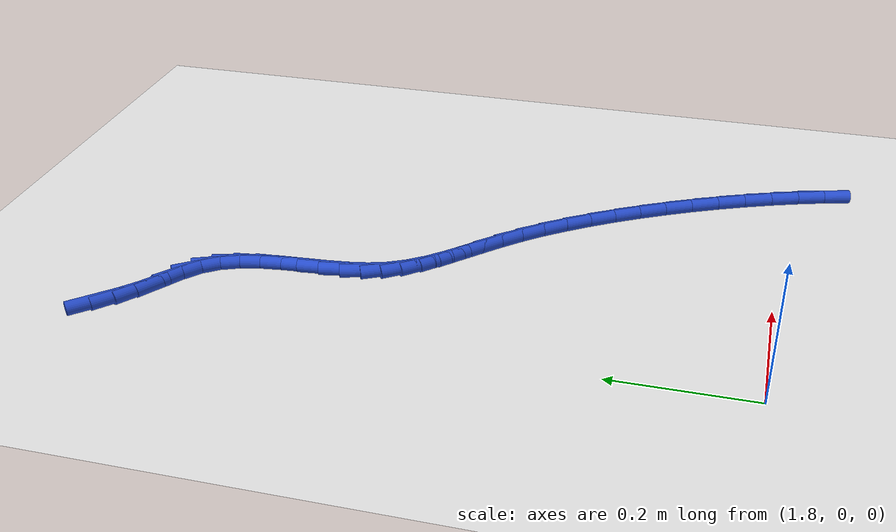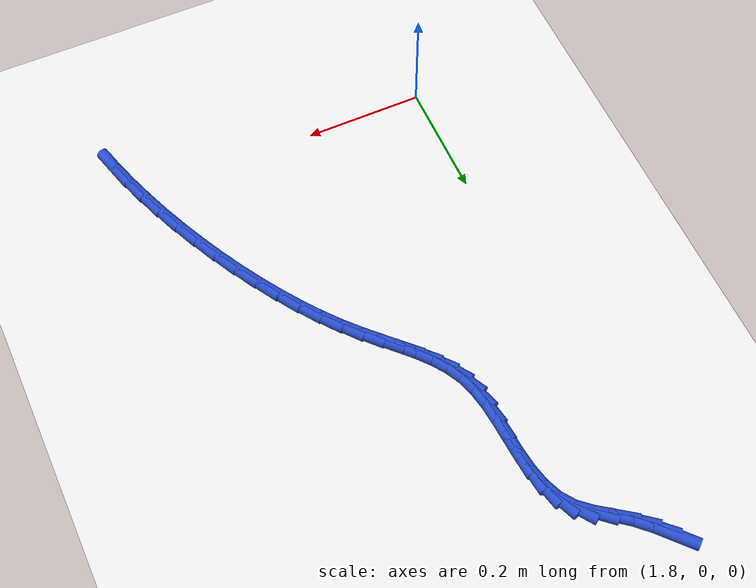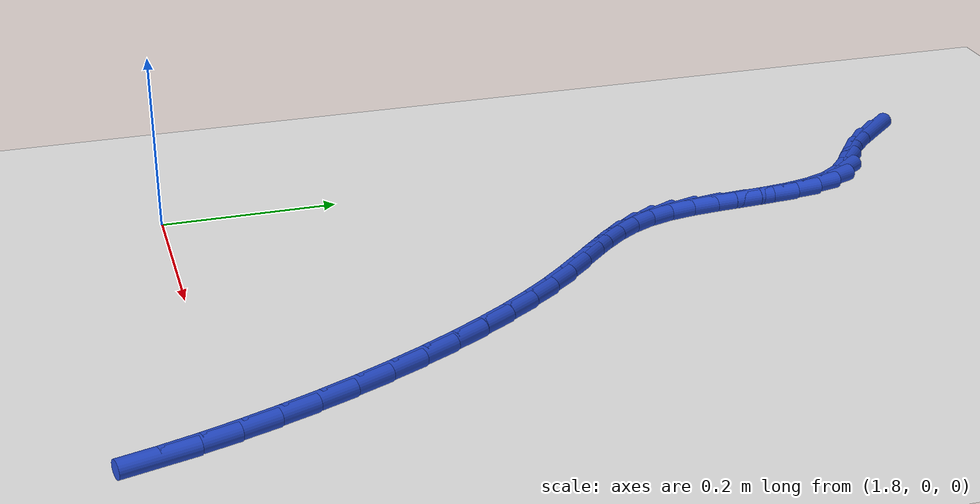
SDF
<sdf version="1.6">
 <world name="default">
  <model name="ground_plane">
   <static>1</static>
   <link name="link">
    <collision name="collision">
     <geometry><plane><normal>0 0 1</normal><size>100 100</size></plane></geometry>
     <surface><friction><ode><mu>100</mu><mu2>50</mu2></ode></friction></surface>
    </collision>
    <visual name="visual">
     <cast_shadows>0</cast_shadows>
     <geometry><plane><normal>0 0 1</normal><size>100 100</size></plane></geometry>
     <material>
      <script><uri>file://media/materials/scripts/gazebo.material</uri><name>Gazebo/WhiteGlow</name></script>
     </material>
    </visual>
   </link>
  </model>
  <model name="line">
   <link name="link_97">
    <pose>1.7933710728537295 0.8896627664505518 0.01 0 1.57 -0.8343291271236721</pose>
    <collision name="collision">
     <geometry><cylinder><radius>0.01</radius><length>0.08</length></cylinder></geometry>
    </collision>
    <visual name="visual">
     <material>
      <script><name>Gazebo/Blue</name><uri>file://media/materials/scripts/gazebo.material</uri></script>
     </material>
     <geometry><cylinder><radius>0.01</radius><length>0.08</length></cylinder></geometry>
    </visual>
   </link>
   <link name="link_98">
    <pose>1.8142726996185656 0.8666086233509885 0.01 0 1.57 -0.7571475396808894</pose>
    <collision name="collision">
     <geometry><cylinder><radius>0.01</radius><length>0.08</length></cylinder></geometry>
    </collision>
    <visual name="visual">
     <material>
      <script><name>Gazebo/Blue</name><uri>file://media/materials/scripts/gazebo.material</uri></script>
     </material>
     <geometry><cylinder><radius>0.01</radius><length>0.08</length></cylinder></geometry>
    </visual>
   </link>
   <link name="link_99">
    <pose>1.8366672112632192 0.8454449841064782 0.01 0 1.57 -0.6636603782006256</pose>
    <collision name="collision">
     <geometry><cylinder><radius>0.01</radius><length>0.08</length></cylinder></geometry>
    </collision>
    <visual name="visual">
     <material>
      <script><name>Gazebo/Blue</name><uri>file://media/materials/scripts/gazebo.material</uri></script>
     </material>
     <geometry><cylinder><radius>0.01</radius><length>0.08</length></cylinder></geometry>
    </visual>
   </link>
   <link name="link_100">
    <pose>1.8607914538881587 0.8265801444571018 0.01 0 1.57 -0.616992772604168</pose>
    <collision name="collision">
     <geometry><cylinder><radius>0.01</radius><length>0.08</length></cylinder></geometry>
    </collision>
    <visual name="visual">
     <material>
      <script><name>Gazebo/Blue</name><uri>file://media/materials/scripts/gazebo.material</uri></script>
     </material>
     <geometry><cylinder><radius>0.01</radius><length>0.08</length></cylinder></geometry>
    </visual>
   </link>
   <link name="link_101">
    <pose>1.8854063956211324 0.8091188263907333 0.01 0 1.57 -0.7208788655949174</pose>
    <collision name="collision">
     <geometry><cylinder><radius>0.01</radius><length>0.08</length></cylinder></geometry>
    </collision>
    <visual name="visual">
     <material>
      <script><name>Gazebo/Blue</name><uri>file://media/materials/scripts/gazebo.material</uri></script>
     </material>
     <geometry><cylinder><radius>0.01</radius><length>0.08</length></cylinder></geometry>
    </visual>
   </link>
   <link name="link_102">
    <pose>1.906993225353623 0.7901521190332621 0.01 0 1.57 -0.9642696358644515</pose>
    <collision name="collision">
     <geometry><cylinder><radius>0.01</radius><length>0.08</length></cylinder></geometry>
    </collision>
    <visual name="visual">
     <material>
      <script><name>Gazebo/Blue</name><uri>file://media/materials/scripts/gazebo.material</uri></script>
     </material>
     <geometry><cylinder><radius>0.01</radius><length>0.08</length></cylinder></geometry>
    </visual>
   </link>
   <link name="link_103">
    <pose>1.9228018541670975 0.7673652802544804 0.01 0 1.57 -1.1887102563978869</pose>
    <collision name="collision">
     <geometry><cylinder><radius>0.01</radius><length>0.08</length></cylinder></geometry>
    </collision>
    <visual name="visual">
     <material>
      <script><name>Gazebo/Blue</name><uri>file://media/materials/scripts/gazebo.material</uri></script>
     </material>
     <geometry><cylinder><radius>0.01</radius><length>0.08</length></cylinder></geometry>
    </visual>
   </link>
   <link name="link_104">
    <pose>1.9333721927984975 0.7410600172873854 0.01 0 1.57 -1.347632574996978</pose>
    <collision name="collision">
     <geometry><cylinder><radius>0.01</radius><length>0.08</length></cylinder></geometry>
    </collision>
    <visual name="visual">
     <material>
      <script><name>Gazebo/Blue</name><uri>file://media/materials/scripts/gazebo.material</uri></script>
     </material>
     <geometry><cylinder><radius>0.01</radius><length>0.08</length></cylinder></geometry>
    </visual>
   </link>
   <link name="link_105">
    <pose>1.9399454495634814 0.7120957607070432 0.01 0 1.57 -1.4473406068308807</pose>
    <collision name="collision">
     <geometry><cylinder><radius>0.01</radius><length>0.08</length></cylinder></geometry>
    </collision>
    <visual name="visual">
     <material>
      <script><name>Gazebo/Blue</name><uri>file://media/materials/scripts/gazebo.material</uri></script>
     </material>
     <geometry><cylinder><radius>0.01</radius><length>0.08</length></cylinder></geometry>
    </visual>
   </link>
   <link name="link_106">
    <pose>1.9437628327777103 0.6813319410885196 0.01 0 1.57 -1.498291754001495</pose>
    <collision name="collision">
     <geometry><cylinder><radius>0.01</radius><length>0.08</length></cylinder></geometry>
    </collision>
    <visual name="visual">
     <material>
      <script><name>Gazebo/Blue</name><uri>file://media/materials/scripts/gazebo.material</uri></script>
     </material>
     <geometry><cylinder><radius>0.01</radius><length>0.08</length></cylinder></geometry>
    </visual>
   </link>
   <link name="link_107">
    <pose>1.9460655507568436 0.6496279890068803 0.01 0 1.57 -1.5070388086806348</pose>
    <collision name="collision">
     <geometry><cylinder><radius>0.01</radius><length>0.08</length></cylinder></geometry>
    </collision>
    <visual name="visual">
     <material>
      <script><name>Gazebo/Blue</name><uri>file://media/materials/scripts/gazebo.material</uri></script>
     </material>
     <geometry><cylinder><radius>0.01</radius><length>0.08</length></cylinder></geometry>
    </visual>
   </link>
   <link name="link_108">
    <pose>1.948094811816542 0.6178433350371918 0.01 0 1.57 -1.4744363349459095</pose>
    <collision name="collision">
     <geometry><cylinder><radius>0.01</radius><length>0.08</length></cylinder></geometry>
    </collision>
    <visual name="visual">
     <material>
      <script><name>Gazebo/Blue</name><uri>file://media/materials/scripts/gazebo.material</uri></script>
     </material>
     <geometry><cylinder><radius>0.01</radius><length>0.08</length></cylinder></geometry>
    </visual>
   </link>
   <link name="link_109">
    <pose>1.9510918242724644 0.5868374097545197 0.01 0 1.57 -1.3953506728197003</pose>
    <collision name="collision">
     <geometry><cylinder><radius>0.01</radius><length>0.08</length></cylinder></geometry>
    </collision>
    <visual name="visual">
     <material>
      <script><name>Gazebo/Blue</name><uri>file://media/materials/scripts/gazebo.material</uri></script>
     </material>
     <geometry><cylinder><radius>0.01</radius><length>0.08</length></cylinder></geometry>
    </visual>
   </link>
   <link name="link_110">
    <pose>1.9562977964402717 0.5574696437339298 0.01 0 1.57 -1.2607620063272547</pose>
    <collision name="collision">
     <geometry><cylinder><radius>0.01</radius><length>0.08</length></cylinder></geometry>
    </collision>
    <visual name="visual">
     <material>
      <script><name>Gazebo/Blue</name><uri>file://media/materials/scripts/gazebo.material</uri></script>
     </material>
     <geometry><cylinder><radius>0.01</radius><length>0.08</length></cylinder></geometry>
    </visual>
   </link>
   <link name="link_111">
    <pose>1.9649168190091344 0.5305659144944601 0.01 0 1.57 -1.1014275664627078</pose>
    <collision name="collision">
     <geometry><cylinder><radius>0.01</radius><length>0.08</length></cylinder></geometry>
    </collision>
    <visual name="visual">
     <material>
      <script><name>Gazebo/Blue</name><uri>file://media/materials/scripts/gazebo.material</uri></script>
     </material>
     <geometry><cylinder><radius>0.01</radius><length>0.08</length></cylinder></geometry>
    </visual>
   </link>
   <link name="link_112">
    <pose>1.9772891318333616 0.506171208151153 0.01 0 1.57 -0.9672960814724032</pose>
    <collision name="collision">
     <geometry><cylinder><radius>0.01</radius><length>0.08</length></cylinder></geometry>
    </collision>
    <visual name="visual">
     <material>
      <script><name>Gazebo/Blue</name><uri>file://media/materials/scripts/gazebo.material</uri></script>
     </material>
     <geometry><cylinder><radius>0.01</radius><length>0.08</length></cylinder></geometry>
    </visual>
   </link>
   <link name="link_113">
    <pose>1.9928854497071884 0.483544490110883 0.01 0 1.57 -0.8699741017478171</pose>
    <collision name="collision">
     <geometry><cylinder><radius>0.01</radius><length>0.08</length></cylinder></geometry>
    </collision>
    <visual name="visual">
     <material>
      <script><name>Gazebo/Blue</name><uri>file://media/materials/scripts/gazebo.material</uri></script>
     </material>
     <geometry><cylinder><radius>0.01</radius><length>0.08</length></cylinder></geometry>
    </visual>
   </link>
   <link name="link_114">
    <pose>2.0111382349380706 0.4619101468498766 0.01 0 1.57 -0.8111560004687935</pose>
    <collision name="collision">
     <geometry><cylinder><radius>0.01</radius><length>0.08</length></cylinder></geometry>
    </collision>
    <visual name="visual">
     <material>
      <script><name>Gazebo/Blue</name><uri>file://media/materials/scripts/gazebo.material</uri></script>
     </material>
     <geometry><cylinder><radius>0.01</radius><length>0.08</length></cylinder></geometry>
    </visual>
   </link>
   <link name="link_115">
    <pose>2.0314799498334635 0.44049256484436095 0.01 0 1.57 -0.7879832076532565</pose>
    <collision name="collision">
     <geometry><cylinder><radius>0.01</radius><length>0.08</length></cylinder></geometry>
    </collision>
    <visual name="visual">
     <material>
      <script><name>Gazebo/Blue</name><uri>file://media/materials/scripts/gazebo.material</uri></script>
     </material>
     <geometry><cylinder><radius>0.01</radius><length>0.08</length></cylinder></geometry>
    </visual>
   </link>
   <link name="link_116">
    <pose>2.053343056700822 0.41851613057056286 0.01 0 1.57 -0.7961057927715118</pose>
    <collision name="collision">
     <geometry><cylinder><radius>0.01</radius><length>0.08</length></cylinder></geometry>
    </collision>
    <visual name="visual">
     <material>
      <script><name>Gazebo/Blue</name><uri>file://media/materials/scripts/gazebo.material</uri></script>
     </material>
     <geometry><cylinder><radius>0.01</radius><length>0.08</length></cylinder></geometry>
    </visual>
   </link>
   <link name="link_117">
    <pose>2.0761600178476014 0.39520523050470946 0.01 0 1.57 -0.8309707560359553</pose>
    <collision name="collision">
     <geometry><cylinder><radius>0.01</radius><length>0.08</length></cylinder></geometry>
    </collision>
    <visual name="visual">
     <material>
      <script><name>Gazebo/Blue</name><uri>file://media/materials/scripts/gazebo.material</uri></script>
     </material>
     <geometry><cylinder><radius>0.01</radius><length>0.08</length></cylinder></geometry>
    </visual>
   </link>
   <link name="link_118">
    <pose>2.0993633629921913 0.3697844212447295 0.01 0 1.57 -0.8818676172520815</pose>
    <collision name="collision">
     <geometry><cylinder><radius>0.01</radius><length>0.08</length></cylinder></geometry>
    </collision>
    <visual name="visual">
     <material>
      <script><name>Gazebo/Blue</name><uri>file://media/materials/scripts/gazebo.material</uri></script>
     </material>
     <geometry><cylinder><radius>0.01</radius><length>0.08</length></cylinder></geometry>
    </visual>
   </link>
   <link name="link_119">
    <pose>2.1224794728143026 0.34171510649903913 0.01 0 1.57 -0.9288947507747697</pose>
    <collision name="collision">
     <geometry><cylinder><radius>0.01</radius><length>0.08</length></cylinder></geometry>
    </collision>
    <visual name="visual">
     <material>
      <script><name>Gazebo/Blue</name><uri>file://media/materials/scripts/gazebo.material</uri></script>
     </material>
     <geometry><cylinder><radius>0.01</radius><length>0.08</length></cylinder></geometry>
    </visual>
   </link>
   <link name="link_120">
    <pose>2.1453150154260654 0.3111660377489664 0.01 0 1.57 -0.9703198477390742</pose>
    <collision name="collision">
     <geometry><cylinder><radius>0.01</radius><length>0.08</length></cylinder></geometry>
    </collision>
    <visual name="visual">
     <material>
      <script><name>Gazebo/Blue</name><uri>file://media/materials/scripts/gazebo.material</uri></script>
     </material>
     <geometry><cylinder><radius>0.01</radius><length>0.08</length></cylinder></geometry>
    </visual>
   </link>
   <link name="link_121">
    <pose>2.16772875519281 0.2784374392584724 0.01 0 1.57 -1.0076230627697182</pose>
    <collision name="collision">
     <geometry><cylinder><radius>0.01</radius><length>0.08</length></cylinder></geometry>
    </collision>
    <visual name="visual">
     <material>
      <script><name>Gazebo/Blue</name><uri>file://media/materials/scripts/gazebo.material</uri></script>
     </material>
     <geometry><cylinder><radius>0.01</radius><length>0.08</length></cylinder></geometry>
    </visual>
   </link>
   <link name="link_122">
    <pose>2.1895794564798634 0.24382953529151766 0.01 0 1.57 -1.0419520797495998</pose>
    <collision name="collision">
     <geometry><cylinder><radius>0.01</radius><length>0.08</length></cylinder></geometry>
    </collision>
    <visual name="visual">
     <material>
      <script><name>Gazebo/Blue</name><uri>file://media/materials/scripts/gazebo.material</uri></script>
     </material>
     <geometry><cylinder><radius>0.01</radius><length>0.08</length></cylinder></geometry>
    </visual>
   </link>
   <link name="link_123">
    <pose>2.210725883652557 0.20764255011206378 0.01 0 1.57 -1.074230789772529</pose>
    <collision name="collision">
     <geometry><cylinder><radius>0.01</radius><length>0.08</length></cylinder></geometry>
    </collision>
    <visual name="visual">
     <material>
      <script><name>Gazebo/Blue</name><uri>file://media/materials/scripts/gazebo.material</uri></script>
     </material>
     <geometry><cylinder><radius>0.01</radius><length>0.08</length></cylinder></geometry>
    </visual>
   </link>
   <link name="link_124">
    <pose>2.23102680107622 0.1701767079840706 0.01 0 1.57 -1.1052374591958005</pose>
    <collision name="collision">
     <geometry><cylinder><radius>0.01</radius><length>0.08</length></cylinder></geometry>
    </collision>
    <visual name="visual">
     <material>
      <script><name>Gazebo/Blue</name><uri>file://media/materials/scripts/gazebo.material</uri></script>
     </material>
     <geometry><cylinder><radius>0.01</radius><length>0.08</length></cylinder></geometry>
    </visual>
   </link>
   <link name="link_125">
    <pose>2.250340973116181 0.13173223317149937 0.01 0 1.57 -1.135663701206188</pose>
    <collision name="collision">
     <geometry><cylinder><radius>0.01</radius><length>0.08</length></cylinder></geometry>
    </collision>
    <visual name="visual">
     <material>
      <script><name>Gazebo/Blue</name><uri>file://media/materials/scripts/gazebo.material</uri></script>
     </material>
     <geometry><cylinder><radius>0.01</radius><length>0.08</length></cylinder></geometry>
    </visual>
   </link>
   <link name="link_126">
    <pose>2.268527164137771 0.09260934993831126 0.01 0 1.57 -1.1661623844312214</pose>
    <collision name="collision">
     <geometry><cylinder><radius>0.01</radius><length>0.08</length></cylinder></geometry>
    </collision>
    <visual name="visual">
     <material>
      <script><name>Gazebo/Blue</name><uri>file://media/materials/scripts/gazebo.material</uri></script>
     </material>
     <geometry><cylinder><radius>0.01</radius><length>0.08</length></cylinder></geometry>
    </visual>
   </link>
   <link name="link_127">
    <pose>2.2854441385063176 0.05310828254846692 0.01 0 1.57 -1.1973906869221835</pose>
    <collision name="collision">
     <geometry><cylinder><radius>0.01</radius><length>0.08</length></cylinder></geometry>
    </collision>
    <visual name="visual">
     <material>
      <script><name>Gazebo/Blue</name><uri>file://media/materials/scripts/gazebo.material</uri></script>
     </material>
     <geometry><cylinder><radius>0.01</radius><length>0.08</length></cylinder></geometry>
    </visual>
   </link>
   <link name="link_128">
    <pose>2.3009506605871515 0.01352925526592728 0.01 0 1.57 -1.2300536443302665</pose>
    <collision name="collision">
     <geometry><cylinder><radius>0.01</radius><length>0.08</length></cylinder></geometry>
    </collision>
    <visual name="visual">
     <material>
      <script><name>Gazebo/Blue</name><uri>file://media/materials/scripts/gazebo.material</uri></script>
     </material>
     <geometry><cylinder><radius>0.01</radius><length>0.08</length></cylinder></geometry>
    </visual>
   </link>
   <link name="link_129">
    <pose>2.3149054947456014 -0.02582750764534674 0.01 0 1.57 -1.2649536193162738</pose>
    <collision name="collision">
     <geometry><cylinder><radius>0.01</radius><length>0.08</length></cylinder></geometry>
    </collision>
    <visual name="visual">
     <material>
      <script><name>Gazebo/Blue</name><uri>file://media/materials/scripts/gazebo.material</uri></script>
     </material>
     <geometry><cylinder><radius>0.01</radius><length>0.08</length></cylinder></geometry>
    </visual>
   </link>
   <link name="link_130">
    <pose>2.327167405346997 -0.06466178192139427 0.01 0 1.57 -1.303052142984208</pose>
    <collision name="collision">
     <geometry><cylinder><radius>0.01</radius><length>0.08</length></cylinder></geometry>
    </collision>
    <visual name="visual">
     <material>
      <script><name>Gazebo/Blue</name><uri>file://media/materials/scripts/gazebo.material</uri></script>
     </material>
     <geometry><cylinder><radius>0.01</radius><length>0.08</length></cylinder></geometry>
    </visual>
   </link>
  </model>
 </world>
</sdf>
